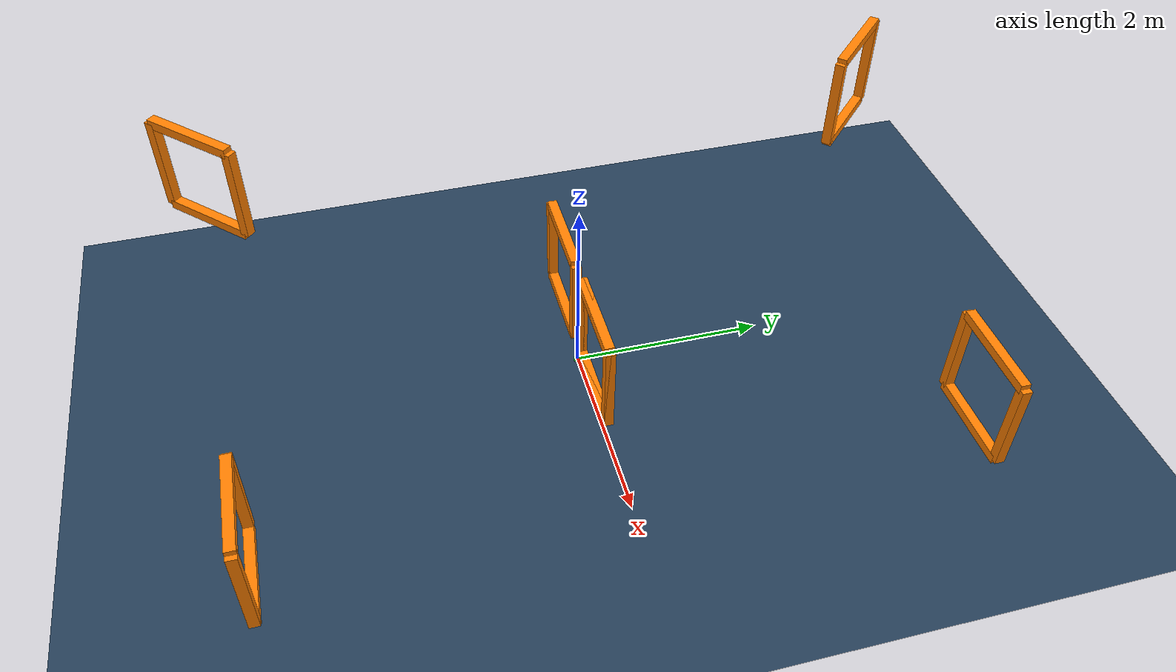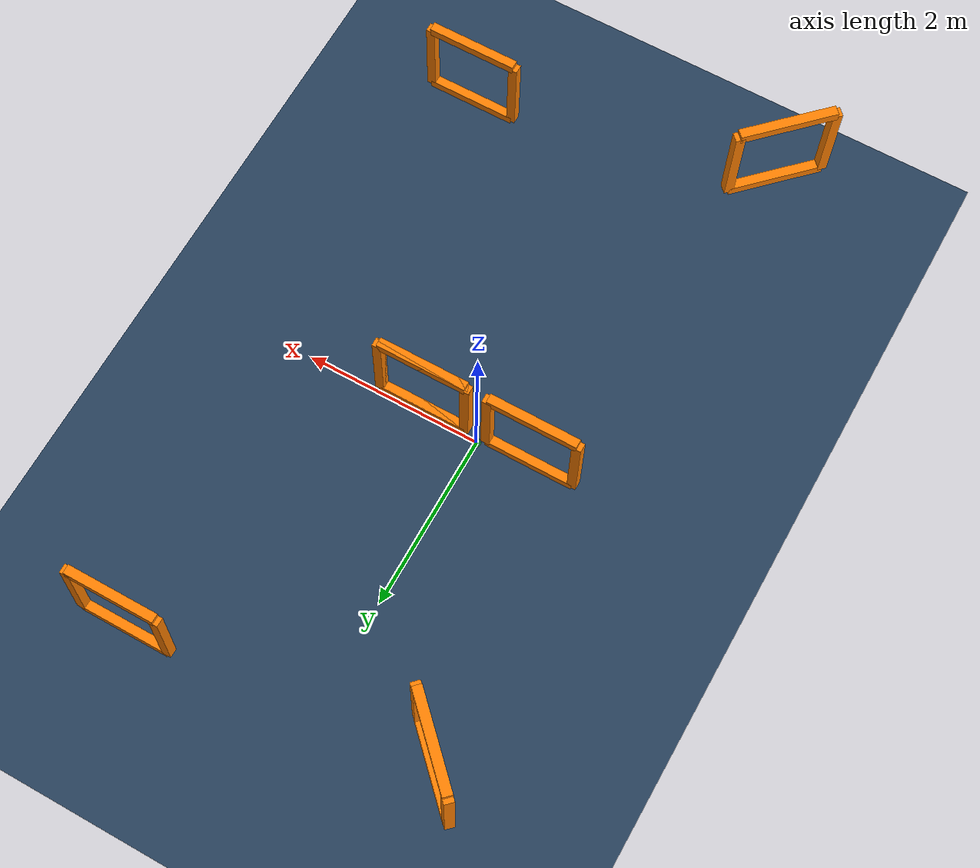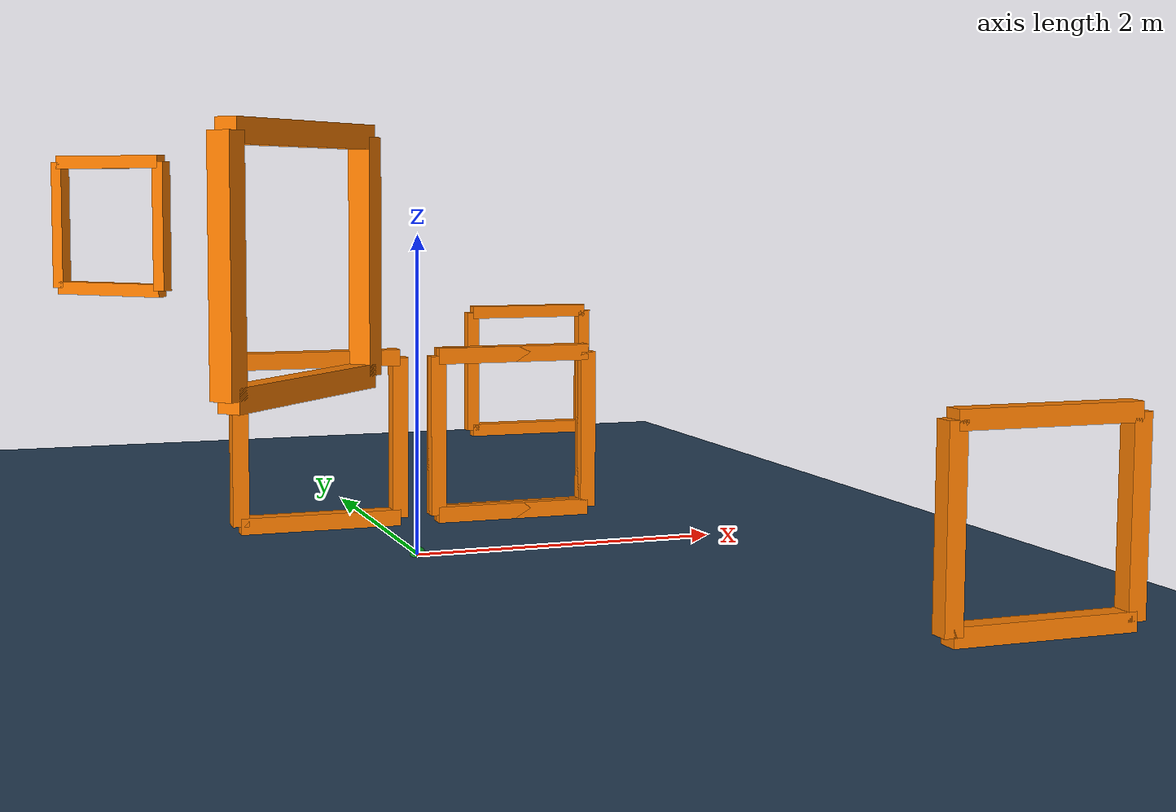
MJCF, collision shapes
<mujoco model="CF2 Racing simple - powerloop">
  <include file="cf2_asset.xml" />

  <statistic center="0 0 1" extent="5.0" meansize=".1" />

  <visual>
    <headlight diffuse="0.6 0.6 0.6" ambient="0.3 0.3 0.3" specular="0 0 0" />
    <rgba haze="0.15 0.25 0.35 1" />
    <global azimuth="-20" elevation="-20" ellipsoidinertia="true" offwidth="1080" offheight="720" />
  </visual>

  <asset>
    <texture type="skybox" builtin="gradient" rgb1="0.3 0.5 0.7" rgb2="0 0 0" width="512" height="3072" />
    <texture type="2d" name="groundplane" builtin="checker" mark="edge" rgb1="0.2 0.3 0.4"
      rgb2="0.1 0.2 0.3" markrgb="0.8 0.8 0.8" width="300" height="300" />
    <material name="groundplane" texture="groundplane" texuniform="true" texrepeat="5 5" reflectance="0.2" />
  </asset>

  <worldbody>
    <light pos="0 0 3" dir="0 0 -1" directional="true" />
    <geom name="floor" size="0 0 0.05" type="plane" material="groundplane"
          contype="0" conaffinity="0" />

    <body name="cf_body" pos="0 0 1" childclass="cf2">
      <freejoint />
      <inertial pos="0 0 0" mass="0.0282" diaginertia="1.657199937e-5 1.665600030e-5 2.926200250e-5" />
      <camera name="cf_track" pos="-1 0 .5" xyaxes="0 -1 0 1 0 2" mode="trackcom" />

      <geom mesh="cf2_0" material="blue_propeller_plastic" class="visual" />
      <geom mesh="cf2_1" material="medium_gloss_plastic"   class="visual" />
      <geom mesh="cf2_2" material="polished_gold"          class="visual" />
      <geom mesh="cf2_3" material="polished_plastic"       class="visual" />
      <geom mesh="cf2_4" material="burnished_chrome"       class="visual" />
      <geom mesh="cf2_5" material="body_frame_plastic"     class="visual" />
      <geom mesh="cf2_6" material="blue"                   class="visual" />

      <geom mesh="cf2_collision_0"  class="visual" />
      <geom mesh="cf2_collision_1"  class="visual" />
      <geom mesh="cf2_collision_2"  class="visual" />
      <geom mesh="cf2_collision_3"  class="visual" />
      <geom mesh="cf2_collision_4"  class="visual" />
      <geom mesh="cf2_collision_5"  class="visual" />
      <geom mesh="cf2_collision_6"  class="visual" />
      <geom mesh="cf2_collision_7"  class="visual" />
      <geom mesh="cf2_collision_8"  class="visual" />
      <geom mesh="cf2_collision_9"  class="visual" />
      <geom mesh="cf2_collision_10" class="visual" />
      <geom mesh="cf2_collision_11" class="visual" />
      <geom mesh="cf2_collision_12" class="visual" />
      <geom mesh="cf2_collision_13" class="visual" />
      <geom mesh="cf2_collision_14" class="visual" />
      <geom mesh="cf2_collision_15" class="visual" />
      <geom mesh="cf2_collision_16" class="visual" />
      <geom mesh="cf2_collision_17" class="visual" />
      <geom mesh="cf2_collision_18" class="visual" />
      <geom mesh="cf2_collision_19" class="visual" />
      <geom mesh="cf2_collision_20" class="visual" />
      <geom mesh="cf2_collision_21" class="visual" />
      <geom mesh="cf2_collision_22" class="visual" />
      <geom mesh="cf2_collision_23" class="visual" />
      <geom mesh="cf2_collision_24" class="visual" />
      <geom mesh="cf2_collision_25" class="visual" />
      <geom mesh="cf2_collision_26" class="visual" />
      <geom mesh="cf2_collision_27" class="visual" />
      <geom mesh="cf2_collision_28" class="visual" />
      <geom mesh="cf2_collision_29" class="visual" />
      <geom mesh="cf2_collision_30" class="visual" />
      <geom mesh="cf2_collision_31" class="visual" />

      <!-- Sphere kept for visualisation only; contacts are disabled
           (contype=0, conaffinity=0) and collision is checked analytically
           in _check_gate_collisions for speed. -->
      <geom name="cf_col" type="sphere" size="0.06" rgba="0 0 1 0"
            contype="0" conaffinity="0" class="collision" />

      <site name="cf_imu"       group="5" />
      <site name="cf_actuation" group="5" />
    </body>

    <body name="racingtarget_body" mocap="true">
      <geom name="racingtarget" type="sphere" size="0.05"
            rgba="0 1 0 0.5" contype="0" conaffinity="0" />
    </body>

    <body name="gate_0" pos="2.0 3.5 0.75" euler="0.0000 0.0000 -90.0002">
      <!-- Bars are visual-only (contype=0, conaffinity=0); collision is
           checked analytically in _check_gate_collisions for speed. -->
      <geom type="box" size="0.05 0.5 0.05" pos="0 0 0.5"  rgba="1 0.5 0 1" contype="0" conaffinity="0"/>
      <geom type="box" size="0.05 0.5 0.05" pos="0 0 -0.5" rgba="1 0.5 0 1" contype="0" conaffinity="0"/>
      <geom type="box" size="0.05 0.05 0.5" pos="0 0.5 0"  rgba="1 0.5 0 1" contype="0" conaffinity="0"/>
      <geom type="box" size="0.05 0.05 0.5" pos="0 -0.5 0" rgba="1 0.5 0 1" contype="0" conaffinity="0"/>
    </body>
    <body name="gate_1" pos="-1.5 3.5 2.0" euler="0.0000 0.0000 45.0001">
      <!-- Bars are visual-only (contype=0, conaffinity=0); collision is
           checked analytically in _check_gate_collisions for speed. -->
      <geom type="box" size="0.05 0.5 0.05" pos="0 0 0.5"  rgba="1 0.5 0 1" contype="0" conaffinity="0"/>
      <geom type="box" size="0.05 0.5 0.05" pos="0 0 -0.5" rgba="1 0.5 0 1" contype="0" conaffinity="0"/>
      <geom type="box" size="0.05 0.05 0.5" pos="0 0.5 0"  rgba="1 0.5 0 1" contype="0" conaffinity="0"/>
      <geom type="box" size="0.05 0.05 0.5" pos="0 -0.5 0" rgba="1 0.5 0 1" contype="0" conaffinity="0"/>
    </body>
    <body name="gate_2" pos="-0.625 0.0 0.75" euler="0.0000 0.0000 90.0002">
      <!-- Bars are visual-only (contype=0, conaffinity=0); collision is
           checked analytically in _check_gate_collisions for speed. -->
      <geom type="box" size="0.05 0.5 0.05" pos="0 0 0.5"  rgba="1 0.5 0 1" contype="0" conaffinity="0"/>
      <geom type="box" size="0.05 0.5 0.05" pos="0 0 -0.5" rgba="1 0.5 0 1" contype="0" conaffinity="0"/>
      <geom type="box" size="0.05 0.05 0.5" pos="0 0.5 0"  rgba="1 0.5 0 1" contype="0" conaffinity="0"/>
      <geom type="box" size="0.05 0.05 0.5" pos="0 -0.5 0" rgba="1 0.5 0 1" contype="0" conaffinity="0"/>
    </body>
    <body name="gate_3" pos="0.625 0.0 0.75" euler="0.0000 0.0000 90.0002">
      <!-- Bars are visual-only (contype=0, conaffinity=0); collision is
           checked analytically in _check_gate_collisions for speed. -->
      <geom type="box" size="0.05 0.5 0.05" pos="0 0 0.5"  rgba="1 0.5 0 1" contype="0" conaffinity="0"/>
      <geom type="box" size="0.05 0.5 0.05" pos="0 0 -0.5" rgba="1 0.5 0 1" contype="0" conaffinity="0"/>
      <geom type="box" size="0.05 0.05 0.5" pos="0 0.5 0"  rgba="1 0.5 0 1" contype="0" conaffinity="0"/>
      <geom type="box" size="0.05 0.05 0.5" pos="0 -0.5 0" rgba="1 0.5 0 1" contype="0" conaffinity="0"/>
    </body>
    <body name="gate_4" pos="-1.5 -3.5 2.0" euler="0.0000 0.0000 134.9889">
      <!-- Bars are visual-only (contype=0, conaffinity=0); collision is
           checked analytically in _check_gate_collisions for speed. -->
      <geom type="box" size="0.05 0.5 0.05" pos="0 0 0.5"  rgba="1 0.5 0 1" contype="0" conaffinity="0"/>
      <geom type="box" size="0.05 0.5 0.05" pos="0 0 -0.5" rgba="1 0.5 0 1" contype="0" conaffinity="0"/>
      <geom type="box" size="0.05 0.05 0.5" pos="0 0.5 0"  rgba="1 0.5 0 1" contype="0" conaffinity="0"/>
      <geom type="box" size="0.05 0.05 0.5" pos="0 -0.5 0" rgba="1 0.5 0 1" contype="0" conaffinity="0"/>
    </body>
    <body name="gate_5" pos="2.0 -3.5 0.75" euler="0.0000 0.0000 -90.0002">
      <!-- Bars are visual-only (contype=0, conaffinity=0); collision is
           checked analytically in _check_gate_collisions for speed. -->
      <geom type="box" size="0.05 0.5 0.05" pos="0 0 0.5"  rgba="1 0.5 0 1" contype="0" conaffinity="0"/>
      <geom type="box" size="0.05 0.5 0.05" pos="0 0 -0.5" rgba="1 0.5 0 1" contype="0" conaffinity="0"/>
      <geom type="box" size="0.05 0.05 0.5" pos="0 0.5 0"  rgba="1 0.5 0 1" contype="0" conaffinity="0"/>
      <geom type="box" size="0.05 0.05 0.5" pos="0 -0.5 0" rgba="1 0.5 0 1" contype="0" conaffinity="0"/>
    </body>
    <body name="gate_6" pos="0.625 0.0 0.75" euler="0.0000 0.0000 -90.0002">
      <!-- Bars are visual-only (contype=0, conaffinity=0); collision is
           checked analytically in _check_gate_collisions for speed. -->
      <geom type="box" size="0.05 0.5 0.05" pos="0 0 0.5"  rgba="1 0.5 0 1" contype="0" conaffinity="0"/>
      <geom type="box" size="0.05 0.5 0.05" pos="0 0 -0.5" rgba="1 0.5 0 1" contype="0" conaffinity="0"/>
      <geom type="box" size="0.05 0.05 0.5" pos="0 0.5 0"  rgba="1 0.5 0 1" contype="0" conaffinity="0"/>
      <geom type="box" size="0.05 0.05 0.5" pos="0 -0.5 0" rgba="1 0.5 0 1" contype="0" conaffinity="0"/>
    </body>

    <camera name="overview" mode="fixed" pos="5.0 0.0 4.0" xyaxes="0 1 0 -1 0 1.2" fovy="60"/>
  </worldbody>

  <sensor>
    <!-- Contact sensor removed — collision is now checked analytically
         via _check_gate_collisions (faster, no MJX contact overhead). -->
    <gyro          name="cf_body_gyro"    site="cf_imu" />
    <accelerometer name="cf_body_linacc"  site="cf_imu" />
    <framequat     name="cf_body_quat"    objtype="site" objname="cf_imu" />
  </sensor>

  <actuator>
    <motor class="cf2" ctrlrange="0 0.35"  gear="0 0 1 0 0 0"       site="cf_actuation" name="cf_body_thrust" />
    <motor class="cf2" ctrlrange="-1 1"    gear="0 0 0 -0.00001 0 0" site="cf_actuation" name="cf_x_moment" />
    <motor class="cf2" ctrlrange="-1 1"    gear="0 0 0 0 -0.00001 0" site="cf_actuation" name="cf_y_moment" />
    <motor class="cf2" ctrlrange="-1 1"    gear="0 0 0 0 0 -0.00001" site="cf_actuation" name="cf_z_moment" />
  </actuator>
</mujoco>

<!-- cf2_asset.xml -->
<mujoco model="cf2">
  <option integrator="RK4" density="0" viscosity="0"/>

  <compiler inertiafromgeom="false" autolimits="true"/>

  <default>
    <default class="cf2">
      <default class="visual">
        <geom group="2" type="mesh" contype="0" conaffinity="0"/>
      </default>
      <default class="collision">
        <geom group="3" type="mesh"/>
      </default>
      <site group="5"/>
    </default>
  </default>

  <asset>
    <material name="polished_plastic" rgba="0.631 0.659 0.678 1"/>
    <material name="polished_gold" rgba="0.969 0.878 0.6 1"/>
    <material name="medium_gloss_plastic" rgba="0.109 0.184 0.0 1"/>
    <material name="propeller_plastic" rgba="0.792 0.820 0.933 1"/>
    <material name="blue_propeller_plastic" rgba="0.2 0.2 1 1"/>
    <material name="red_propeller_plastic" rgba="1 0.2 0.2 1"/>
    <material name="white" rgba="1 1 1 1"/>
    <material name="blue" rgba="0 0 1 1"/>
    <material name="red" rgba="1 0 0 1"/>
    <material name="green" rgba="0 1 0 1"/>
    <material name="body_frame_plastic" rgba="0.102 0.102 0.102 1"/>
    <material name="burnished_chrome" rgba="0.898 0.898 0.898 1"/>

    <mesh file="assets/cf2_0.obj"/>
    <mesh file="assets/cf2_1.obj"/>
    <mesh file="assets/cf2_2.obj"/>
    <mesh file="assets/cf2_3.obj"/>
    <mesh file="assets/cf2_4.obj"/>
    <mesh file="assets/cf2_5.obj"/>
    <mesh file="assets/cf2_6.obj"/>
    <mesh file="assets/cf2_collision_0.obj"/>
    <mesh file="assets/cf2_collision_1.obj"/>
    <mesh file="assets/cf2_collision_2.obj"/>
    <mesh file="assets/cf2_collision_3.obj"/>
    <mesh file="assets/cf2_collision_4.obj"/>
    <mesh file="assets/cf2_collision_5.obj"/>
    <mesh file="assets/cf2_collision_6.obj"/>
    <mesh file="assets/cf2_collision_7.obj"/>
    <mesh file="assets/cf2_collision_8.obj"/>
    <mesh file="assets/cf2_collision_9.obj"/>
    <mesh file="assets/cf2_collision_10.obj"/>
    <mesh file="assets/cf2_collision_11.obj"/>
    <mesh file="assets/cf2_collision_12.obj"/>
    <mesh file="assets/cf2_collision_13.obj"/>
    <mesh file="assets/cf2_collision_14.obj"/>
    <mesh file="assets/cf2_collision_15.obj"/>
    <mesh file="assets/cf2_collision_16.obj"/>
    <mesh file="assets/cf2_collision_17.obj"/>
    <mesh file="assets/cf2_collision_18.obj"/>
    <mesh file="assets/cf2_collision_19.obj"/>
    <mesh file="assets/cf2_collision_20.obj"/>
    <mesh file="assets/cf2_collision_21.obj"/>
    <mesh file="assets/cf2_collision_22.obj"/>
    <mesh file="assets/cf2_collision_23.obj"/>
    <mesh file="assets/cf2_collision_24.obj"/>
    <mesh file="assets/cf2_collision_25.obj"/>
    <mesh file="assets/cf2_collision_26.obj"/>
    <mesh file="assets/cf2_collision_27.obj"/>
    <mesh file="assets/cf2_collision_28.obj"/>
    <mesh file="assets/cf2_collision_29.obj"/>
    <mesh file="assets/cf2_collision_30.obj"/>
    <mesh file="assets/cf2_collision_31.obj"/>
  </asset>

</mujoco>
